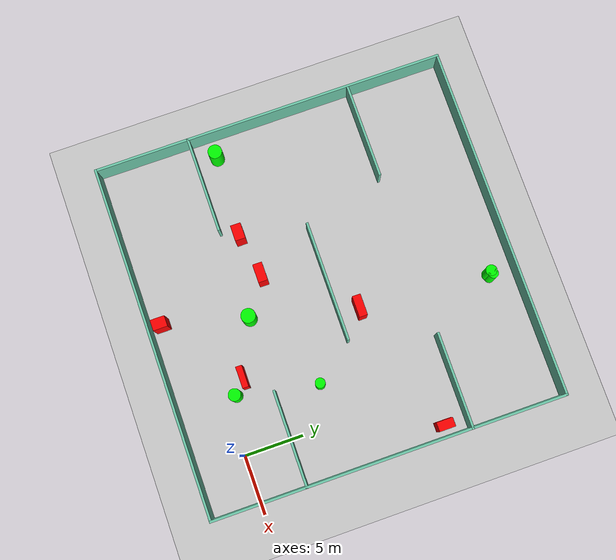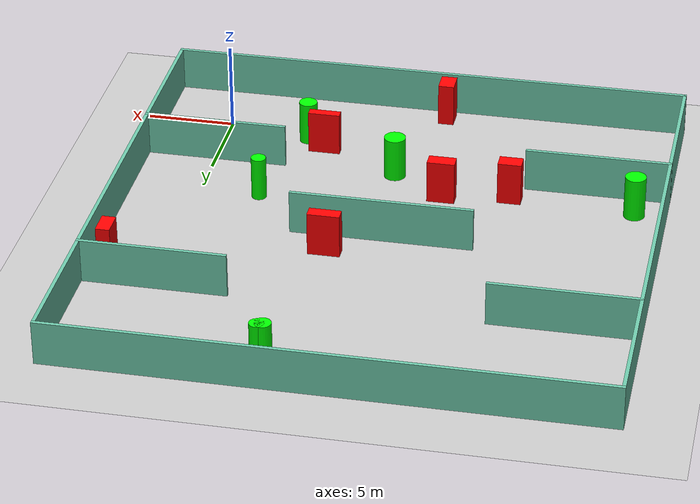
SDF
<sdf version="1.7">
 <world name="default">
  <light name="sun" type="directional">
   <pose>0 0 10 0 -0 0</pose>
   <diffuse>0.8 0.8 0.8 1</diffuse>
   <specular>0.2 0.2 0.2 1</specular>
   <attenuation>
    <range>1000</range>
    <constant>0.9</constant>
    <linear>0.01</linear>
    <quadratic>0.001</quadratic>
   </attenuation>
   <direction>-0.5 0.1 -0.9</direction>
   <spot><inner_angle>0</inner_angle><outer_angle>0</outer_angle><falloff>0</falloff></spot>
  </light>
  <model name="ground_plane">
   <static>1</static>
   <link name="link">
    <collision name="collision">
     <geometry><plane><normal>0 0 1</normal><size>100 100</size></plane></geometry>
     <surface>
      <contact><collide_bitmask>65535</collide_bitmask></contact>
      <friction><ode><mu>100</mu><mu2>50</mu2></ode></friction>
     </surface>
    </collision>
    <visual name="visual">
     <cast_shadows>0</cast_shadows>
     <geometry><plane><normal>0 0 1</normal><size>100 100</size></plane></geometry>
     <material>
      <script><uri>file://media/materials/scripts/gazebo.material</uri><name>Gazebo/Grey</name></script>
     </material>
    </visual>
   </link>
  </model>
  <gravity>0 0 -9.8</gravity>
  <magnetic_field>6e-06 2.3e-05 -4.2e-05</magnetic_field>
  <atmosphere type="adiabatic"/>
  <physics type="ode">
   <max_step_size>0.001</max_step_size>
   <real_time_factor>1</real_time_factor>
   <real_time_update_rate>1000</real_time_update_rate>
  </physics>
  <scene><ambient>0.4 0.4 0.4 1</ambient><background>0.7 0.7 0.7 1</background><shadows>1</shadows></scene>
  <spherical_coordinates>
   <surface_model>EARTH_WGS84</surface_model>
   <latitude_deg>0</latitude_deg>
   <longitude_deg>0</longitude_deg>
   <elevation>0</elevation>
   <heading_deg>0</heading_deg>
  </spherical_coordinates>
  <model name="my_base_walls">
   <link name="Wall_10">
    <collision name="Wall_10_Collision">
     <geometry><box><size>8.2 0.2 2.5</size></box></geometry>
     <pose>0 0 1.25 0 -0 0</pose>
    </collision>
    <visual name="Wall_10_Visual">
     <pose>0 0 1.25 0 -0 0</pose>
     <geometry><box><size>8.2 0.2 2.5</size></box></geometry>
     <material>
      <script><uri>file://media/materials/scripts/gazebo.material</uri><name>Gazebo/Grey</name></script>
      <ambient>0.435294 0.796078 0.67451 1</ambient>
     </material>
     <meta><layer>0</layer></meta>
    </visual>
    <pose>-11 -7 0 0 -0 0</pose>
   </link>
   <link name="Wall_12">
    <collision name="Wall_12_Collision">
     <geometry><box><size>8.2 0.2 2.5</size></box></geometry>
     <pose>0 0 1.25 0 -0 0</pose>
    </collision>
    <visual name="Wall_12_Visual">
     <pose>0 0 1.25 0 -0 0</pose>
     <geometry><box><size>8.2 0.2 2.5</size></box></geometry>
     <material>
      <script><uri>file://media/materials/scripts/gazebo.material</uri><name>Gazebo/Grey</name></script>
      <ambient>0.435294 0.796078 0.67451 1</ambient>
     </material>
     <meta><layer>0</layer></meta>
    </visual>
    <pose>-11 7 0 0 -0 0</pose>
   </link>
   <link name="Wall_14">
    <collision name="Wall_14_Collision">
     <geometry><box><size>8.2 0.2 2.5</size></box></geometry>
     <pose>0 0 1.25 0 -0 0</pose>
    </collision>
    <visual name="Wall_14_Visual">
     <pose>0 0 1.25 0 -0 0</pose>
     <geometry><box><size>8.2 0.2 2.5</size></box></geometry>
     <material>
      <script><uri>file://media/materials/scripts/gazebo.material</uri><name>Gazebo/Grey</name></script>
      <ambient>0.435294 0.796078 0.67451 1</ambient>
     </material>
     <meta><layer>0</layer></meta>
    </visual>
    <pose>11 7 0 0 -0 3.14159</pose>
   </link>
   <link name="Wall_16">
    <collision name="Wall_16_Collision">
     <geometry><box><size>10.2 0.2 2.5</size></box></geometry>
     <pose>0 0 1.25 0 -0 0</pose>
    </collision>
    <visual name="Wall_16_Visual">
     <pose>0 0 1.25 0 -0 0</pose>
     <geometry><box><size>10.2 0.2 2.5</size></box></geometry>
     <material>
      <script><uri>file://media/materials/scripts/gazebo.material</uri><name>Gazebo/Grey</name></script>
      <ambient>0.435294 0.796078 0.67451 1</ambient>
     </material>
     <meta><layer>0</layer></meta>
    </visual>
    <pose>0 0 0 0 -0 3.14159</pose>
   </link>
   <link name="Wall_2">
    <collision name="Wall_2_Collision">
     <geometry><box><size>30.2 0.2 2.5</size></box></geometry>
     <pose>0 0 1.25 0 -0 0</pose>
    </collision>
    <visual name="Wall_2_Visual">
     <pose>0 0 1.25 0 -0 0</pose>
     <geometry><box><size>30.2 0.2 2.5</size></box></geometry>
     <material>
      <script><uri>file://media/materials/scripts/gazebo.material</uri><name>Gazebo/Grey</name></script>
      <ambient>0.435294 0.796078 0.67451 1</ambient>
     </material>
     <meta><layer>0</layer></meta>
    </visual>
    <pose>0 -15 0 0 -0 3.14159</pose>
   </link>
   <link name="Wall_3">
    <collision name="Wall_3_Collision">
     <geometry><box><size>30.2 0.2 2.5</size></box></geometry>
     <pose>0 0 1.25 0 -0 0</pose>
    </collision>
    <visual name="Wall_3_Visual">
     <pose>0 0 1.25 0 -0 0</pose>
     <geometry><box><size>30.2 0.2 2.5</size></box></geometry>
     <material>
      <script><uri>file://media/materials/scripts/gazebo.material</uri><name>Gazebo/Grey</name></script>
      <ambient>0.435294 0.796078 0.67451 1</ambient>
     </material>
     <meta><layer>0</layer></meta>
    </visual>
    <pose>-15 0 0 0 -0 1.5708</pose>
   </link>
   <link name="Wall_4">
    <collision name="Wall_4_Collision">
     <geometry><box><size>30.2 0.2 2.5</size></box></geometry>
     <pose>0 0 1.25 0 -0 0</pose>
    </collision>
    <visual name="Wall_4_Visual">
     <pose>0 0 1.25 0 -0 0</pose>
     <geometry><box><size>30.2 0.2 2.5</size></box></geometry>
     <material>
      <script><uri>file://media/materials/scripts/gazebo.material</uri><name>Gazebo/Grey</name></script>
      <ambient>0.435294 0.796078 0.67451 1</ambient>
     </material>
     <meta><layer>0</layer></meta>
    </visual>
    <pose>0 15 0 0 -0 0</pose>
   </link>
   <link name="Wall_6">
    <collision name="Wall_6_Collision">
     <geometry><box><size>30.2 0.2 2.5</size></box></geometry>
     <pose>0 0 1.25 0 -0 0</pose>
    </collision>
    <visual name="Wall_6_Visual">
     <pose>0 0 1.25 0 -0 0</pose>
     <geometry><box><size>30.2 0.2 2.5</size></box></geometry>
     <material>
      <script><uri>file://media/materials/scripts/gazebo.material</uri><name>Gazebo/Grey</name></script>
      <ambient>0.435294 0.796078 0.67451 1</ambient>
     </material>
     <meta><layer>0</layer></meta>
    </visual>
    <pose>15 0 0 0 -0 1.5708</pose>
   </link>
   <link name="Wall_8">
    <collision name="Wall_8_Collision">
     <geometry><box><size>8.2 0.2 2.5</size></box></geometry>
     <pose>0 0 1.25 0 -0 0</pose>
    </collision>
    <visual name="Wall_8_Visual">
     <pose>0 0 1.25 0 -0 0</pose>
     <geometry><box><size>8.2 0.2 2.5</size></box></geometry>
     <material>
      <script><uri>file://media/materials/scripts/gazebo.material</uri><name>Gazebo/Grey</name></script>
      <ambient>0.435294 0.796078 0.67451 1</ambient>
     </material>
     <meta><layer>0</layer></meta>
    </visual>
    <pose>11 -7 0 0 -0 3.14159</pose>
   </link>
   <static>1</static>
   <pose>-11 11 0 0 -0 0</pose>
  </model>
  <model name="cylinder1">
   <static>1</static>
   <link name="link">
    <inertial>
     <mass>1</mass>
     <inertia><ixx>0.5</ixx><ixy>0</ixy><ixz>0</ixz><iyy>0.5</iyy><iyz>0</iyz><izz>1</izz></inertia>
    </inertial>
    <collision name="collision">
     <geometry><cylinder><radius>0.40956591273378756</radius><length>2.5</length></cylinder></geometry>
    </collision>
    <visual name="visual">
     <geometry><cylinder><radius>0.40956591273378756</radius><length>2.5</length></cylinder></geometry>
     <material>
      <ambient>0 1 0 1</ambient>
      <diffuse>0 1 0 1</diffuse>
      <specular>0.1 0.1 0.1 1</specular>
      <emissive>0 0 0 0</emissive>
     </material>
    </visual>
   </link>
   <pose>-7.115451164938042 23.93024137601114 1.25 0 0 0</pose>
  </model>
  <model name="cylinder2">
   <static>1</static>
   <link name="link">
    <inertial>
     <mass>1</mass>
     <inertia><ixx>0.5</ixx><ixy>0</ixy><ixz>0</ixz><iyy>0.5</iyy><iyz>0</iyz><izz>1</izz></inertia>
    </inertial>
    <collision name="collision">
     <geometry><cylinder><radius>0.5199390618038003</radius><length>2.5</length></cylinder></geometry>
    </collision>
    <visual name="visual">
     <geometry><cylinder><radius>0.5199390618038003</radius><length>2.5</length></cylinder></geometry>
     <material>
      <ambient>0 1 0 1</ambient>
      <diffuse>0 1 0 1</diffuse>
      <specular>0.1 0.1 0.1 1</specular>
      <emissive>0 0 0 0</emissive>
     </material>
    </visual>
   </link>
   <pose>-4.776801149051357 0.935733864239515 1.25 0 0 0</pose>
  </model>
  <model name="cylinder3">
   <static>1</static>
   <link name="link">
    <inertial>
     <mass>1</mass>
     <inertia><ixx>0.5</ixx><ixy>0</ixy><ixz>0</ixz><iyy>0.5</iyy><iyz>0</iyz><izz>1</izz></inertia>
    </inertial>
    <collision name="collision">
     <geometry><cylinder><radius>0.5917346992343573</radius><length>2.5</length></cylinder></geometry>
    </collision>
    <visual name="visual">
     <geometry><cylinder><radius>0.5917346992343573</radius><length>2.5</length></cylinder></geometry>
     <material>
      <ambient>0 1 0 1</ambient>
      <diffuse>0 1 0 1</diffuse>
      <specular>0.1 0.1 0.1 1</specular>
      <emissive>0 0 0 0</emissive>
     </material>
    </visual>
   </link>
   <pose>-24.278870581711946 5.791972966413239 1.25 0 0 0</pose>
  </model>
  <model name="cylinder4">
   <static>1</static>
   <link name="link">
    <inertial>
     <mass>1</mass>
     <inertia><ixx>0.5</ixx><ixy>0</ixy><ixz>0</ixz><iyy>0.5</iyy><iyz>0</iyz><izz>1</izz></inertia>
    </inertial>
    <collision name="collision">
     <geometry><cylinder><radius>0.4227143289477959</radius><length>2.5</length></cylinder></geometry>
    </collision>
    <visual name="visual">
     <geometry><cylinder><radius>0.4227143289477959</radius><length>2.5</length></cylinder></geometry>
     <material>
      <ambient>0 1 0 1</ambient>
      <diffuse>0 1 0 1</diffuse>
      <specular>0.1 0.1 0.1 1</specular>
      <emissive>0 0 0 0</emissive>
     </material>
    </visual>
   </link>
   <pose>-3.4054369447383266 7.704550306779087 1.25 0 0 0</pose>
  </model>
  <model name="cylinder5">
   <static>1</static>
   <link name="link">
    <inertial>
     <mass>1</mass>
     <inertia><ixx>0.5</ixx><ixy>0</ixy><ixz>0</ixz><iyy>0.5</iyy><iyz>0</iyz><izz>1</izz></inertia>
    </inertial>
    <collision name="collision">
     <geometry><cylinder><radius>0.46530349787203595</radius><length>2.5</length></cylinder></geometry>
    </collision>
    <visual name="visual">
     <geometry><cylinder><radius>0.46530349787203595</radius><length>2.5</length></cylinder></geometry>
     <material>
      <ambient>0 1 0 1</ambient>
      <diffuse>0 1 0 1</diffuse>
      <specular>0.1 0.1 0.1 1</specular>
      <emissive>0 0 0 0</emissive>
     </material>
    </visual>
   </link>
   <pose>-7.411150417014849 23.85362591738096 1.25 0 0 0</pose>
  </model>
  <model name="cylinder6">
   <static>1</static>
   <link name="link">
    <inertial>
     <mass>1</mass>
     <inertia><ixx>0.5</ixx><ixy>0</ixy><ixz>0</ixz><iyy>0.5</iyy><iyz>0</iyz><izz>1</izz></inertia>
    </inertial>
    <collision name="collision">
     <geometry><cylinder><radius>0.6141867964089596</radius><length>2.5</length></cylinder></geometry>
    </collision>
    <visual name="visual">
     <geometry><cylinder><radius>0.6141867964089596</radius><length>2.5</length></cylinder></geometry>
     <material>
      <ambient>0 1 0 1</ambient>
      <diffuse>0 1 0 1</diffuse>
      <specular>0.1 0.1 0.1 1</specular>
      <emissive>0 0 0 0</emissive>
     </material>
    </visual>
   </link>
   <pose>-10.442829844429198 4.005441370732164 1.25 0 0 0</pose>
  </model>
  <model name="box1">
   <static>1</static>
   <link name="link">
    <inertial>
     <mass>1</mass>
     <inertia><ixx>0.083</ixx><ixy>0</ixy><ixz>0</ixz><iyy>0.083</iyy><iyz>0</iyz><izz>0.083</izz></inertia>
    </inertial>
    <collision name="collision">
     <geometry><box><size>1.7957739258392045 0.7062943502424566 2.5</size></box></geometry>
    </collision>
    <visual name="visual">
     <geometry><box><size>1.7957739258392045 0.7062943502424566 2.5</size></box></geometry>
     <material>
      <ambient>1 0 0 1</ambient>
      <diffuse>1 0 0 1</diffuse>
      <specular>0.1 0.1 0.1 1</specular>
      <emissive>0 0 0 0</emissive>
     </material>
    </visual>
    <sensor name="my_contact" type="contact">
     <contact><collision>box_collision</collision><topic>__default_topic__</topic></contact>
    </sensor>
   </link>
   <pose>-8.237520959663708 12.796230008826738 1.25 0 0 0</pose>
  </model>
  <model name="box2">
   <static>1</static>
   <link name="link">
    <inertial>
     <mass>1</mass>
     <inertia><ixx>0.083</ixx><ixy>0</ixy><ixz>0</ixz><iyy>0.083</iyy><iyz>0</iyz><izz>0.083</izz></inertia>
    </inertial>
    <collision name="collision">
     <geometry><box><size>1.8082809547468526 0.5191732683875554 2.5</size></box></geometry>
    </collision>
    <visual name="visual">
     <geometry><box><size>1.8082809547468526 0.5191732683875554 2.5</size></box></geometry>
     <material>
      <ambient>1 0 0 1</ambient>
      <diffuse>1 0 0 1</diffuse>
      <specular>0.1 0.1 0.1 1</specular>
      <emissive>0 0 0 0</emissive>
     </material>
    </visual>
    <sensor name="my_contact" type="contact">
     <contact><collision>box_collision</collision><topic>__default_topic__</topic></contact>
    </sensor>
   </link>
   <pose>-5.9523645811251775 1.9675594772141398 1.25 0 0 0</pose>
  </model>
  <model name="box3">
   <static>1</static>
   <link name="link">
    <inertial>
     <mass>1</mass>
     <inertia><ixx>0.083</ixx><ixy>0</ixy><ixz>0</ixz><iyy>0.083</iyy><iyz>0</iyz><izz>0.083</izz></inertia>
    </inertial>
    <collision name="collision">
     <geometry><box><size>0.9085609933513354 1.2186779041492437 2.5</size></box></geometry>
    </collision>
    <visual name="visual">
     <geometry><box><size>0.9085609933513354 1.2186779041492437 2.5</size></box></geometry>
     <material>
      <ambient>1 0 0 1</ambient>
      <diffuse>1 0 0 1</diffuse>
      <specular>0.1 0.1 0.1 1</specular>
      <emissive>0 0 0 0</emissive>
     </material>
    </visual>
    <sensor name="my_contact" type="contact">
     <contact><collision>box_collision</collision><topic>__default_topic__</topic></contact>
    </sensor>
   </link>
   <pose>-12.260661329645533 -2.9950856574010682 1.25 0 0 0</pose>
  </model>
  <model name="box4">
   <static>1</static>
   <link name="link">
    <inertial>
     <mass>1</mass>
     <inertia><ixx>0.083</ixx><ixy>0</ixy><ixz>0</ixz><iyy>0.083</iyy><iyz>0</iyz><izz>0.083</izz></inertia>
    </inertial>
    <collision name="collision">
     <geometry><box><size>1.5561640192045096 0.7983415875836635 2.5</size></box></geometry>
    </collision>
    <visual name="visual">
     <geometry><box><size>1.5561640192045096 0.7983415875836635 2.5</size></box></geometry>
     <material>
      <ambient>1 0 0 1</ambient>
      <diffuse>1 0 0 1</diffuse>
      <specular>0.1 0.1 0.1 1</specular>
      <emissive>0 0 0 0</emissive>
     </material>
    </visual>
    <sensor name="my_contact" type="contact">
     <contact><collision>box_collision</collision><topic>__default_topic__</topic></contact>
    </sensor>
   </link>
   <pose>-13.484635531204649 6.060921359697165 1.25 0 0 0</pose>
  </model>
  <model name="box5">
   <static>1</static>
   <link name="link">
    <inertial>
     <mass>1</mass>
     <inertia><ixx>0.083</ixx><ixy>0</ixy><ixz>0</ixz><iyy>0.083</iyy><iyz>0</iyz><izz>0.083</izz></inertia>
    </inertial>
    <collision name="collision">
     <geometry><box><size>1.3334582923927356 0.8712944692478628 2.5</size></box></geometry>
    </collision>
    <visual name="visual">
     <geometry><box><size>1.3334582923927356 0.8712944692478628 2.5</size></box></geometry>
     <material>
      <ambient>1 0 0 1</ambient>
      <diffuse>1 0 0 1</diffuse>
      <specular>0.1 0.1 0.1 1</specular>
      <emissive>0 0 0 0</emissive>
     </material>
    </visual>
    <sensor name="my_contact" type="contact">
     <contact><collision>box_collision</collision><topic>__default_topic__</topic></contact>
    </sensor>
   </link>
   <pose>-17.257548126608484 5.422836524802449 1.25 0 0 0</pose>
  </model>
  <model name="box6">
   <static>1</static>
   <link name="link">
    <inertial>
     <mass>1</mass>
     <inertia><ixx>0.083</ixx><ixy>0</ixy><ixz>0</ixz><iyy>0.083</iyy><iyz>0</iyz><izz>0.083</izz></inertia>
    </inertial>
    <collision name="collision">
     <geometry><box><size>0.7801041491451107 1.3809804249951714 2.5</size></box></geometry>
    </collision>
    <visual name="visual">
     <geometry><box><size>0.7801041491451107 1.3809804249951714 2.5</size></box></geometry>
     <material>
      <ambient>1 0 0 1</ambient>
      <diffuse>1 0 0 1</diffuse>
      <specular>0.1 0.1 0.1 1</specular>
      <emissive>0 0 0 0</emissive>
     </material>
    </visual>
    <sensor name="my_contact" type="contact">
     <contact><collision>box_collision</collision><topic>__default_topic__</topic></contact>
    </sensor>
   </link>
   <pose>3.018175298820381 16.067102404227644 1.25 0 0 0</pose>
  </model>
 </world>
</sdf>
